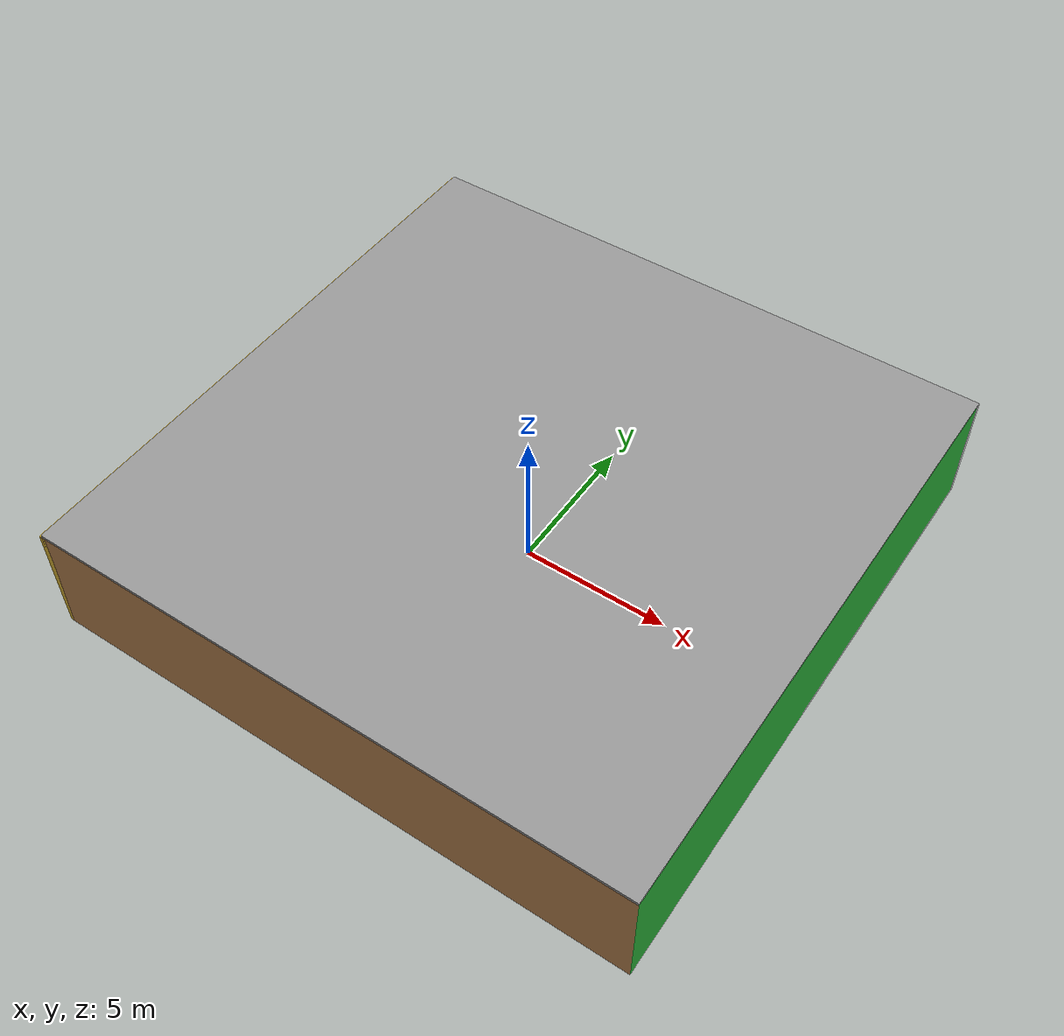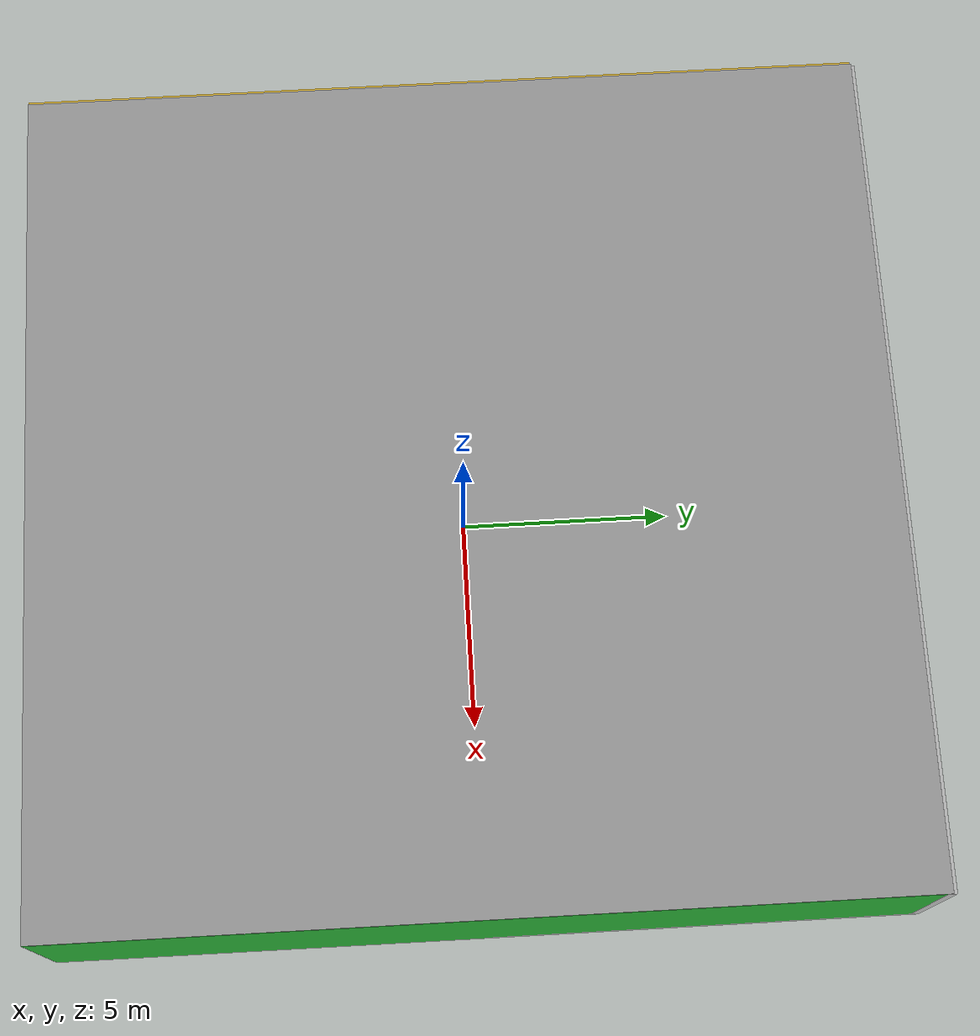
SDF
<sdf version="1.4">
 <world name="default">
  <physics type="ode">
   <max_step_size>0.001</max_step_size>
   <real_time_factor>1</real_time_factor>
   <real_time_update_rate>1000</real_time_update_rate>
   <gravity>0 0 -9.8</gravity>
  </physics>
  <scene><ambient>0.4 0.4 0.4 1</ambient><background>0.7 0.7 0.7 1</background><shadows>1</shadows></scene>
  <model name="Surrounding">
   <static>1</static>
   <link name="Ceiling">
    <collision name="Ceiling_Collision"><geometry><box><size>20 20 0.1</size></box></geometry></collision>
    <visual name="Ceiling_Visual">
     <geometry><box><size>20 20 0.1</size></box></geometry>
     <material>
      <script><uri>file://media/materials/scripts/gazebo.material</uri><name>Gazebo/Grey</name></script>
     </material>
    </visual>
    <pose>0 0 4.05 0 0 0</pose>
   </link>
   <link name="Wall_South">
    <collision name="Wall_South_Collision">
     <geometry><box><size>20 0 4</size></box></geometry>
     <pose>0 0 2 0 -0 0</pose>
    </collision>
    <visual name="Wall_South_Visual">
     <pose>0 0 2 0 -0 0</pose>
     <geometry><box><size>20 0 4</size></box></geometry>
     <material>
      <script><uri>file://media/materials/scripts/gazebo.material</uri><name>Gazebo/WoodFloor</name></script>
     </material>
    </visual>
    <velocity_decay><linear>0</linear><angular>0</angular></velocity_decay>
    <pose>0 -10 0 0 -0 0</pose>
   </link>
   <link name="Wall_East">
    <collision name="Wall_21_Collision">
     <geometry><box><size>20 0 4</size></box></geometry>
     <pose>0 0 2 0 -0 0</pose>
    </collision>
    <visual name="Wall_21_Visual">
     <pose>0 0 2 0 -0 0</pose>
     <geometry><box><size>20 0 4</size></box></geometry>
     <material>
      <script><uri>file://media/materials/scripts/gazebo.material</uri><name>Gazebo/GreenGlow</name></script>
     </material>
    </visual>
    <velocity_decay><linear>0</linear><angular>0</angular></velocity_decay>
    <pose>10 0 0 0 -0 1.5708</pose>
   </link>
   <link name="Wall_North">
    <collision name="Wall_22_Collision">
     <geometry><box><size>20 0.2 4</size></box></geometry>
     <pose>0 0 2 0 -0 0</pose>
    </collision>
    <visual name="Wall_22_Visual">
     <pose>0 0 2 0 -0 0</pose>
     <geometry><box><size>20 0.2 4</size></box></geometry>
     <material>
      <script><uri>file://media/materials/scripts/gazebo.material</uri><name>Gazebo/LightOn</name></script>
     </material>
    </visual>
    <velocity_decay><linear>0</linear><angular>0</angular></velocity_decay>
    <pose>0 10 0 0 -0 0</pose>
   </link>
   <link name="Wall_West">
    <collision name="Wall_23_Collision">
     <geometry><box><size>20 0.2 4</size></box></geometry>
     <pose>0 0 2 0 -0 0</pose>
    </collision>
    <visual name="Wall_23_Visual">
     <pose>0 0 2 0 -0 0</pose>
     <geometry><box><size>20 0.2 4</size></box></geometry>
     <material>
      <script><uri>file://media/materials/scripts/gazebo.material</uri><name>Gazebo/Gold</name></script>
     </material>
    </visual>
    <velocity_decay><linear>0</linear><angular>0</angular></velocity_decay>
    <pose>-10 0 0 0 0 -1.5708</pose>
   </link>
   <link name="Ground_link">
    <collision name="collision">
     <pose>0 0 .05 0 -0 0</pose>
     <geometry><box><size>20 20 0.1</size></box></geometry>
    </collision>
    <visual name="visual">
     <pose>0 0 .05 0 -0 0</pose>
     <geometry><box><size>20 20 0.1</size></box></geometry>
     <material>
      <script><uri>file://media/materials/scripts/gazebo.material</uri><name>Gazebo/WhiteGlow</name></script>
     </material>
    </visual>
   </link>
   <static>1</static>
  </model>
  <spherical_coordinates>
   <surface_model>EARTH_WGS84</surface_model>
   <latitude_deg>0</latitude_deg>
   <longitude_deg>0</longitude_deg>
   <elevation>0</elevation>
   <heading_deg>0</heading_deg>
  </spherical_coordinates>
  <light name="lightball_0" type="diffuse">
   <diffuse>0.8 0.8 0.8 1</diffuse>
   <specular>0.2 0.2 0.2 1</specular>
   <attenuation>
    <range>100</range>
    <constant>0.7</constant>
    <linear>0.01</linear>
    <quadratic>0.001</quadratic>
   </attenuation>
   <direction>-0.5 0.1 -0.9</direction>
   <pose>-5.48365855305 -8.75362972123 1.97122709778 0 0 0</pose>
  </light>
  <light name="lightball_1" type="diffuse">
   <diffuse>0.8 0.8 0.8 1</diffuse>
   <specular>0.2 0.2 0.2 1</specular>
   <attenuation>
    <range>100</range>
    <constant>0.7</constant>
    <linear>0.01</linear>
    <quadratic>0.001</quadratic>
   </attenuation>
   <direction>-0.5 0.1 -0.9</direction>
   <pose>3.46850677729 4.39039370569 2.37589891607 0 0 0</pose>
  </light>
  <light name="lightball_2" type="diffuse">
   <diffuse>0.8 0.8 0.8 1</diffuse>
   <specular>0.2 0.2 0.2 1</specular>
   <attenuation>
    <range>100</range>
    <constant>0.7</constant>
    <linear>0.01</linear>
    <quadratic>0.001</quadratic>
   </attenuation>
   <direction>-0.5 0.1 -0.9</direction>
   <pose>-6.61484523265 1.5374794887 3.61339229404 0 0 0</pose>
  </light>
  <light name="lightball_3" type="diffuse">
   <diffuse>0.8 0.8 0.8 1</diffuse>
   <specular>0.2 0.2 0.2 1</specular>
   <attenuation>
    <range>100</range>
    <constant>0.7</constant>
    <linear>0.01</linear>
    <quadratic>0.001</quadratic>
   </attenuation>
   <direction>-0.5 0.1 -0.9</direction>
   <pose>-1.70108966435 -5.34143192712 0.993571146806 0 0 0</pose>
  </light>
  <light name="lightball_4" type="diffuse">
   <diffuse>0.8 0.8 0.8 1</diffuse>
   <specular>0.2 0.2 0.2 1</specular>
   <attenuation>
    <range>100</range>
    <constant>0.7</constant>
    <linear>0.01</linear>
    <quadratic>0.001</quadratic>
   </attenuation>
   <direction>-0.5 0.1 -0.9</direction>
   <pose>-2.04073777037 6.45885531018 2.18481439414 0 0 0</pose>
  </light>
  <light name="lightball_5" type="diffuse">
   <diffuse>0.8 0.8 0.8 1</diffuse>
   <specular>0.2 0.2 0.2 1</specular>
   <attenuation>
    <range>100</range>
    <constant>0.7</constant>
    <linear>0.01</linear>
    <quadratic>0.001</quadratic>
   </attenuation>
   <direction>-0.5 0.1 -0.9</direction>
   <pose>-0.656422192211 2.52669127019 1.85893799479 0 0 0</pose>
  </light>
  <light name="lightball_6" type="diffuse">
   <diffuse>0.8 0.8 0.8 1</diffuse>
   <specular>0.2 0.2 0.2 1</specular>
   <attenuation>
    <range>100</range>
    <constant>0.7</constant>
    <linear>0.01</linear>
    <quadratic>0.001</quadratic>
   </attenuation>
   <direction>-0.5 0.1 -0.9</direction>
   <pose>1.5260706723 6.68908723717 2.35750780209 0 0 0</pose>
  </light>
  <light name="lightball_7" type="diffuse">
   <diffuse>0.8 0.8 0.8 1</diffuse>
   <specular>0.2 0.2 0.2 1</specular>
   <attenuation>
    <range>100</range>
    <constant>0.7</constant>
    <linear>0.01</linear>
    <quadratic>0.001</quadratic>
   </attenuation>
   <direction>-0.5 0.1 -0.9</direction>
   <pose>3.47597632133 2.87162923906 3.58267405265 0 0 0</pose>
  </light>
  <include>
   <uri>model://robocup_3Dsim_goal</uri>
   <pose>-7.20720864141 -5.55864281707 0 0 0 1.91389442941</pose>
  </include>
  <include><uri>model://cabinet</uri><pose>-4.54352507368 -7.33548930512 0 0 0 2.92396812645</pose></include>
  <include><uri>model://table</uri><pose>-5.0898252258 -1.66975159501 0 0 0 1.05637476447</pose></include>
  <include><uri>model://cabinet</uri><pose>-1.68335864054 2.46212291894 0 0 0 0.601643767509</pose></include>
  <include>
   <uri>model://construction_cone</uri>
   <pose>-2.57153376488 5.3453234569 0 0 0 2.74328770199</pose>
  </include>
  <include><uri>model://cabinet</uri><pose>1.73172983011 5.08646080096 0 0 0 2.72229288328</pose></include>
  <include><uri>model://cabinet</uri><pose>4.16600694793 -4.56608858675 0 0 0 0.965908087721</pose></include>
 </world>
</sdf>

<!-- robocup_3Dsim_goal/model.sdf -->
<sdf version="1.5">
  <model name="robocup_3d_goal">
    <static>true</static>
    <link name="left_post">
      <pose>0 1.05 0.45 0 0 0</pose>
      <collision name="collision">
        <geometry>
          <cylinder>
            <radius>0.05</radius>
            <length>0.9</length>
          </cylinder>
        </geometry>
      </collision>
      <visual name="visual">
        <geometry>
          <cylinder>
            <radius>0.05</radius>
            <length>0.9</length>
          </cylinder>
        </geometry>
        <material>
          <script>
            <uri>file://media/materials/scripts/gazebo.material</uri>
            <name>Gazebo/ZincYellow</name>
          </script>
        </material>
      </visual>
    </link>
    <link name="left_support_horiz_lower">
      <pose>0.30 1.05 0.01 0 0 0</pose>
      <collision name="collision">
        <geometry>
          <box>
            <size>0.50 0.02 0.02</size>
          </box>
        </geometry>
      </collision>
      <visual name="visual">
        <geometry>
          <box>
            <size>0.50 0.02 0.02</size>
          </box>
        </geometry>
        <material>
          <script>
            <uri>file://media/materials/scripts/gazebo.material</uri>
            <name>Gazebo/White</name>
          </script>
        </material>
      </visual>
    </link>
    <link name="left_support_horiz_upper">
      <pose>0.30 1.05 0.79 0 0 0</pose>
      <collision name="collision">
        <geometry>
          <box>
            <size>0.50 0.02 0.02</size>
          </box>
        </geometry>
      </collision>
      <visual name="visual">
        <geometry>
          <box>
            <size>0.50 0.02 0.02</size>
          </box>
        </geometry>
        <material>
          <script>
            <uri>file://media/materials/scripts/gazebo.material</uri>
            <name>Gazebo/White</name>
          </script>
        </material>
      </visual>
    </link>
    <link name="left_support_vertical">
      <pose>0.56 1.05 0.4 0 1.5708 0</pose>
      <collision name="collision">
        <geometry>
          <box>
            <size>0.80 0.02 0.02</size>
          </box>
        </geometry>
      </collision>
      <visual name="visual">
        <geometry>
          <box>
            <size>0.80 0.02 0.02</size>
          </box>
        </geometry>
        <material>
          <script>
            <uri>file://media/materials/scripts/gazebo.material</uri>
            <name>Gazebo/White</name>
          </script>
        </material>
      </visual>
    </link>
    <link name="right_support_horiz_lower">
      <pose>0.30 -1.05 0.01 0 0 0</pose>
      <collision name="collision">
        <geometry>
          <box>
            <size>0.50 0.02 0.02</size>
          </box>
        </geometry>
      </collision>
      <visual name="visual">
        <geometry>
          <box>
            <size>0.50 0.02 0.02</size>
          </box>
        </geometry>
        <material>
          <script>
            <uri>file://media/materials/scripts/gazebo.material</uri>
            <name>Gazebo/White</name>
          </script>
        </material>
      </visual>
    </link>
    <link name="right_support_horiz_upper">
      <pose>0.30 -1.05 0.79 0 0 0</pose>
      <collision name="collision">
        <geometry>
          <box>
            <size>0.50 0.02 0.02</size>
          </box>
        </geometry>
      </collision>
      <visual name="visual">
        <geometry>
          <box>
            <size>0.50 0.02 0.02</size>
          </box>
        </geometry>
        <material>
          <script>
            <uri>file://media/materials/scripts/gazebo.material</uri>
            <name>Gazebo/White</name>
          </script>
        </material>
      </visual>
    </link>
    <link name="right_support_vertical">
      <pose>0.56 -1.05 0.4 0 1.5708 0</pose>
      <collision name="collision">
        <geometry>
          <box>
            <size>0.80 0.02 0.02</size>
          </box>
        </geometry>
      </collision>
      <visual name="visual">
        <geometry>
          <box>
            <size>0.80 0.02 0.02</size>
          </box>
        </geometry>
        <material>
          <script>
            <uri>file://media/materials/scripts/gazebo.material</uri>
            <name>Gazebo/White</name>
          </script>
        </material>
      </visual>
    </link>
    <link name="center_support_horiz_lower">
      <pose>0.56 0 0.01 0 1.5708 0</pose>
      <collision name="collision">
        <geometry>
          <box>
            <size>0.02 2.08 0.02</size>
          </box>
        </geometry>
      </collision>
      <visual name="visual">
        <geometry>
          <box>
            <size>0.02 2.08 0.02</size>
          </box>
        </geometry>
        <material>
          <script>
            <uri>file://media/materials/scripts/gazebo.material</uri>
            <name>Gazebo/White</name>
          </script>
        </material>
      </visual>
    </link>
    <link name="center_support_horiz_upper">
      <pose>0.56 0 0.79 0 1.5708 0</pose>
      <collision name="collision">
        <geometry>
          <box>
            <size>0.02 2.08 0.02</size>
          </box>
        </geometry>
      </collision>
      <visual name="visual">
        <geometry>
          <box>
            <size>0.02 2.08 0.02</size>
          </box>
        </geometry>
        <material>
          <script>
            <uri>file://media/materials/scripts/gazebo.material</uri>
            <name>Gazebo/White</name>
          </script>
        </material>
      </visual>
    </link>
    <link name="right_post">
      <pose>0 -1.05 0.45 0 0 0</pose>
      <collision name="collision">
        <geometry>
          <cylinder>
            <radius>0.05</radius>
            <length>0.9</length>
          </cylinder>
        </geometry>
      </collision>
      <visual name="visual">
        <geometry>
          <cylinder>
            <radius>0.05</radius>
            <length>0.9</length>
          </cylinder>
        </geometry>
        <material>
          <script>
            <uri>file://media/materials/scripts/gazebo.material</uri>
            <name>Gazebo/ZincYellow</name>
          </script>
        </material>
      </visual>
    </link>
    <link name="crossbar">
      <pose>0 0 0.85 1.57 1.57 0</pose>
      <collision name="collision">
        <geometry>
          <cylinder>
            <radius>0.05</radius>
            <length>2.0</length>
          </cylinder>
        </geometry>
      </collision>
      <visual name="visual">
        <geometry>
          <cylinder>
            <radius>0.05</radius>
            <length>2.0</length>
          </cylinder>
        </geometry>
        <material>
          <script>
            <uri>file://media/materials/scripts/gazebo.material</uri>
            <name>Gazebo/ZincYellow</name>
          </script>
        </material>
      </visual>
    </link>
    <link name="center_net">
      <pose>0.56 0 0.40 0 0 0</pose>
      <collision name="collision">
        <geometry>
          <box>
            <size>0.01 2.1 0.80</size>
          </box>
        </geometry>
      </collision>
      <visual name="visual">
        <geometry>
          <box>
            <size>0.01 2.1 0.80</size>
          </box>
        </geometry>
        <material>
          <script>
            <uri>model://../model_source/models/robocup09_spl_field/materials/scripts/</uri>
            <uri>model://../model_source/models/robocup09_spl_field/materials/textures/</uri>
            <name>RoboCup/Net</name>
          </script>
        </material>
      </visual>
    </link>
    <link name="left_net">
      <pose>0.30 1.05 0.40 0 0 0</pose>
      <collision name="collision">
        <geometry>
          <box>
            <size>0.50 0.01 0.76</size>
          </box>
        </geometry>
      </collision>
      <visual name="visual">
        <geometry>
          <box>
            <size>0.50 0.01 0.76</size>
          </box>
        </geometry>
        <material>
          <script>
            <uri>model://../model_source/models/robocup09_spl_field/materials/scripts/</uri>
            <uri>model://../model_source/models/robocup09_spl_field/materials/textures/</uri>
            <name>RoboCup/Net</name>
          </script>
        </material>
      </visual>
    </link>
    <link name="right_net">
      <pose>0.30 -1.05 0.40 0 0 0</pose>
      <collision name="collision">
        <geometry>
          <box>
            <size>0.50 0.01 0.76</size>
          </box>
        </geometry>
      </collision>
      <visual name="visual">
        <geometry>
          <box>
            <size>0.50 0.01 0.76</size>
          </box>
        </geometry>
        <material>
          <script>
            <uri>model://../model_source/models/robocup09_spl_field/materials/scripts/</uri>
            <uri>model://../model_source/models/robocup09_spl_field/materials/textures/</uri>
            <name>RoboCup/Net</name>
          </script>
        </material>
      </visual>
    </link>
  </model>
</sdf>

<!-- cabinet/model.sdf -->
<sdf version="1.5">
  <model name="cabinet">
    <static>true</static>
    <link name="cabinet_bottom_plate">
      <inertial>
        <pose>0 0 -1 0 0 0</pose>
        <inertia>
          <ixx>2.050000</ixx>
          <ixy>0</ixy>
          <ixz>0</ixz>
          <iyy>2.050000</iyy>
          <iyz>0</iyz>
          <izz>2.050000</izz>
        </inertia>
        <mass>25.000000</mass>
      </inertial>
      <collision name="cabinet_bottom_plate_geom">
        <pose>0 0 0.010000 0 0 0</pose>
        <geometry>
          <box>
            <size>0.450000 0.450000 0.020000</size>
          </box>
        </geometry>
      </collision>
      <visual name="cabinet_bottom_plate_geom_visual">
        <pose>0 0 0.010000 0 0 0</pose>
        <geometry>
          <box>
            <size>0.450000 0.450000 0.020000</size>
          </box>
        </geometry>
        <material>
          <script>
            <uri>model://media/materials/scripts/gazebo.material</uri>
            <name>Gazebo/Wood</name>
          </script>
        </material>
      </visual>
      <collision name="cabinet_bottom_plate_geom_cabinet_back_plate">
        <pose>0.235000 0 0.510000 0 0 0</pose>
        <geometry>
          <box>
            <size>0.020000 0.450000 1.020000</size>
          </box>
        </geometry>
      </collision>
      <visual name="cabinet_bottom_plate_geom_cabinet_back_plate_visual">
        <pose>0.235000 0 0.510000 0 0 0</pose>
        <geometry>
          <box>
            <size>0.020000 0.450000 1.020000</size>
          </box>
        </geometry>
        <material>
          <script>
            <uri>model://media/materials/scripts/gazebo.material</uri>
            <name>Gazebo/Wood</name>
          </script>
        </material>
      </visual>
      <collision name="cabinet_bottom_plate_geom_cabinet_left_plate">
        <pose>0 0.235000 0.510000 0 0 0</pose>
        <geometry>
          <box>
            <size>0.450000 0.020000 1.020000</size>
          </box>
        </geometry>
      </collision>
      <visual name="cabinet_bottom_plate_geom_cabinet_left_plate_visual">
        <pose>0 0.235000 0.510000 0 0 0</pose>
        <geometry>
          <box>
            <size>0.450000 0.020000 1.020000</size>
          </box>
        </geometry>
        <material>
          <script>
            <uri>model://media/materials/scripts/gazebo.material</uri>
            <name>Gazebo/Wood</name>
          </script>
        </material>
      </visual>
      <collision name="cabinet_bottom_plate_geom_cabinet_middle_plate">
        <pose>0 0 0.510000 0 0 0</pose>
        <geometry>
          <box>
            <size>0.450000 0.450000 0.020000</size>
          </box>
        </geometry>
      </collision>
      <visual name="cabinet_bottom_plate_geom_cabinet_middle_plate_visual">
        <pose>0 0 0.510000 0 0 0</pose>
        <geometry>
          <box>
            <size>0.450000 0.450000 0.020000</size>
          </box>
        </geometry>
        <material>
          <script>
            <uri>model://media/materials/scripts/gazebo.material</uri>
            <name>Gazebo/Wood</name>
          </script>
        </material>
      </visual>
      <collision name="cabinet_bottom_plate_geom_cabinet_right_plate">
        <pose>0 -0.235000 0.510000 0 0 0</pose>
        <geometry>
          <box>
            <size>0.450000 0.020000 1.020000</size>
          </box>
        </geometry>
      </collision>
      <visual name="cabinet_bottom_plate_geom_cabinet_right_plate_visual">
        <pose>0 -0.235000 0.510000 0 0 0</pose>
        <geometry>
          <box>
            <size>0.450000 0.020000 1.020000</size>
          </box>
        </geometry>
        <material>
          <script>
            <uri>model://media/materials/scripts/gazebo.material</uri>
            <name>Gazebo/Wood</name>
          </script>
        </material>
      </visual>
      <collision name="cabinet_bottom_plate_geom_cabinet_top_plate">
        <pose>0 0 1.010000 0 0 0</pose>
        <geometry>
          <box>
            <size>0.450000 0.450000 0.020000</size>
          </box>
        </geometry>
      </collision>
      <visual name="cabinet_bottom_plate_geom_cabinet_top_plate_visual">
        <pose>0 0 1.010000 0 0 0</pose>
        <geometry>
          <box>
            <size>0.450000 0.450000 0.020000</size>
          </box>
        </geometry>
        <material>
          <script>
            <uri>model://media/materials/scripts/gazebo.material</uri>
            <name>Gazebo/Wood</name>
          </script>
        </material>
      </visual>
    </link>
  </model>
</sdf>

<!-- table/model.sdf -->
<sdf version="1.5">
  <model name="table">
    <static>true</static>
    <link name="link">
      <collision name="surface">
        <pose>0 0 1.0 0 0 0</pose>
        <geometry>
          <box>
            <size>1.5 0.8 0.03</size>
          </box>
        </geometry>
        <surface>
          <friction>
            <ode>
              <mu>0.6</mu>
              <mu2>0.6</mu2>
            </ode>
          </friction>
        </surface>
      </collision>
      <visual name="visual1">
        <pose>0 0 1.0 0 0 0</pose>
        <geometry>
          <box>
            <size>1.5 0.8 0.03</size>
          </box>
        </geometry>
        <material>
          <script>
            <uri>model://media/materials/scripts/gazebo.material</uri>
            <name>Gazebo/Wood</name>
          </script>
        </material>
      </visual>
      <collision name="front_left_leg">
        <pose>0.68 0.38 0.5 0 0 0</pose>
        <geometry>
          <cylinder>
            <radius>0.02</radius>
            <length>1.0</length>
          </cylinder>
        </geometry>
      </collision>
      <visual name="front_left_leg">
        <pose>0.68 0.38 0.5 0 0 0</pose>
        <geometry>
          <cylinder>
            <radius>0.02</radius>
            <length>1.0</length>
          </cylinder>
        </geometry>
        <material>
          <script>
            <uri>model://media/materials/scripts/gazebo.material</uri>
            <name>Gazebo/Grey</name>
          </script>
        </material>
      </visual>
      <collision name="front_right_leg">
        <pose>0.68 -0.38 0.5 0 0 0</pose>
        <geometry>
          <cylinder>
            <radius>0.02</radius>
            <length>1.0</length>
          </cylinder>
        </geometry>
      </collision>
      <visual name="front_right_leg">
        <pose>0.68 -0.38 0.5 0 0 0</pose>
        <geometry>
          <cylinder>
            <radius>0.02</radius>
            <length>1.0</length>
          </cylinder>
        </geometry>
        <material>
          <script>
            <uri>model://media/materials/scripts/gazebo.material</uri>
            <name>Gazebo/Grey</name>
          </script>
        </material>
      </visual>
      <collision name="back_right_leg">
        <pose>-0.68 -0.38 0.5 0 0 0</pose>
        <geometry>
          <cylinder>
            <radius>0.02</radius>
            <length>1.0</length>
          </cylinder>
        </geometry>
      </collision>
      <visual name="back_right_leg">
        <pose>-0.68 -0.38 0.5 0 0 0</pose>
        <geometry>
          <cylinder>
            <radius>0.02</radius>
            <length>1.0</length>
          </cylinder>
        </geometry>
        <material>
          <script>
            <uri>model://media/materials/scripts/gazebo.material</uri>
            <name>Gazebo/Grey</name>
          </script>
        </material>
      </visual>
      <collision name="back_left_leg">
        <pose>-0.68 0.38 0.5 0 0 0</pose>
        <geometry>
          <cylinder>
            <radius>0.02</radius>
            <length>1.0</length>
          </cylinder>
        </geometry>
      </collision>
      <visual name="back_left_leg">
        <pose>-0.68 0.38 0.5 0 0 0</pose>
        <geometry>
          <cylinder>
            <radius>0.02</radius>
            <length>1.0</length>
          </cylinder>
        </geometry>
        <material>
          <script>
            <uri>model://media/materials/scripts/gazebo.material</uri>
            <name>Gazebo/Grey</name>
          </script>
        </material>
      </visual>
    </link>
  </model>
</sdf>

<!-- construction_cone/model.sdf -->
<sdf version="1.5">
  <model name="Construction Cone">
    <link name="link">
      <collision name="collision">
        <geometry>
          <mesh>
            <scale>10 10 10</scale>
            <uri>file://isr-testbed/construction_cone/meshes/construction_cone.dae</uri>
          </mesh>
        </geometry>
      </collision>
      <visual name="visual">
        <geometry>
          <mesh>
            <scale>10 10 10</scale>
            <uri>file://isr-testbed/construction_cone/meshes/construction_cone.dae</uri>
          </mesh>
        </geometry>
      </visual>
    </link>
  </model>
</sdf>
